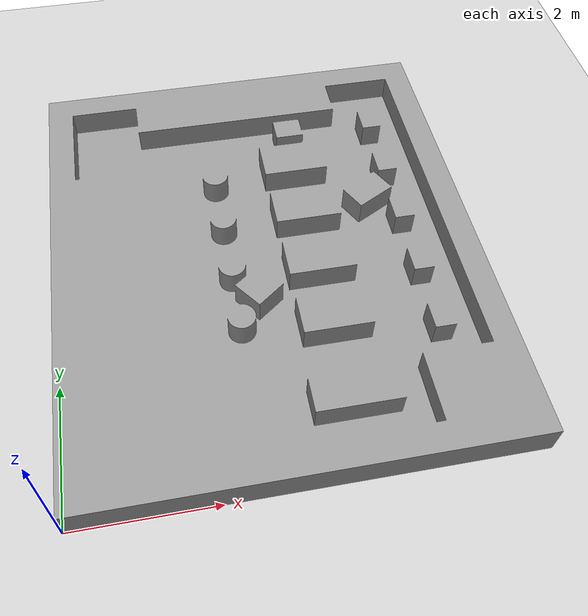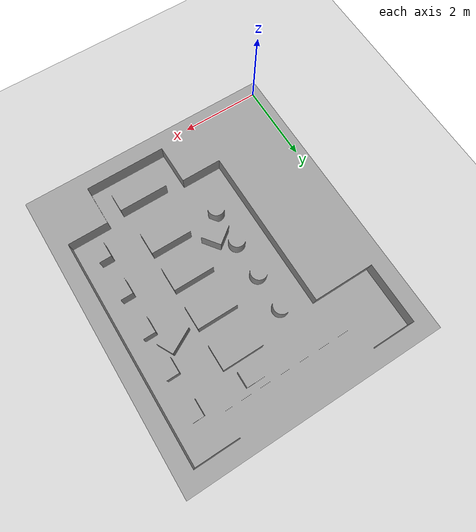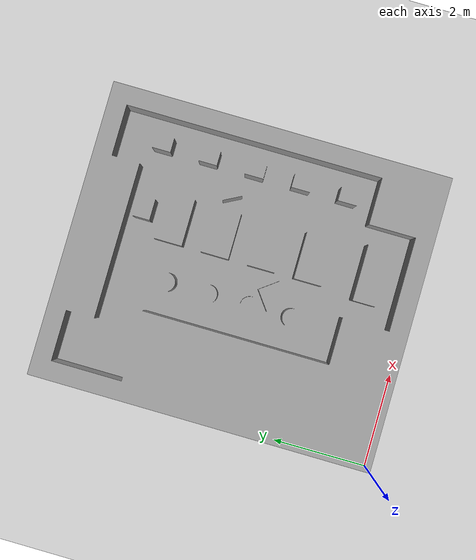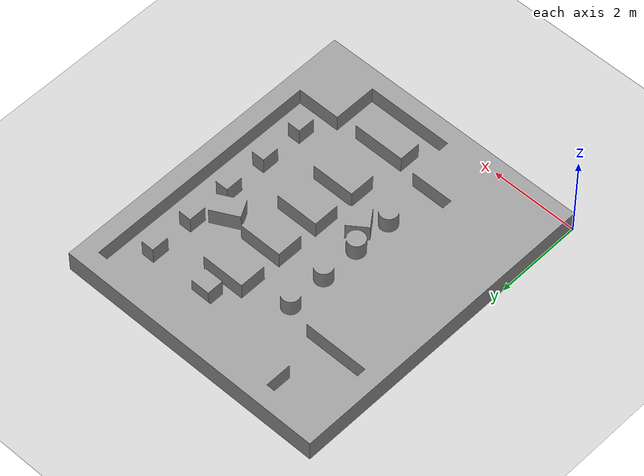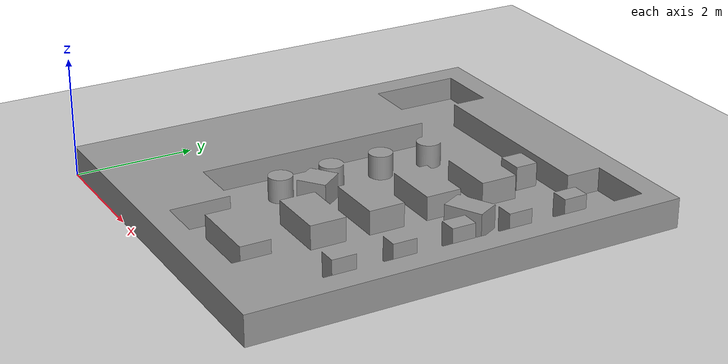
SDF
<sdf version="1.4">
 <world name="default">
  <light name="sun" type="directional">
   <pose>0 0 10 0 -0 0</pose>
   <diffuse>0.8 0.8 0.8 1</diffuse>
   <specular>0.2 0.2 0.2 1</specular>
   <attenuation>
    <range>1000</range>
    <constant>0.9</constant>
    <linear>0.01</linear>
    <quadratic>0.001</quadratic>
   </attenuation>
   <direction>-0.5 0.1 -0.9</direction>
  </light>
  <model name="ground_plane">
   <static>1</static>
   <link name="link">
    <collision name="collision">
     <geometry><plane><normal>0 0 1</normal><size>100 100</size></plane></geometry>
     <surface>
      <friction><ode><mu>1</mu><mu2>1</mu2></ode></friction>
      <contact>
       <ode>
        <kp>1e7</kp>
        <kd>10.0</kd>
        <soft_cfm>0.0</soft_cfm>
        <soft_erp>0.2</soft_erp>
        <maxVel>0.0001</maxVel>
        <minDepth>0.001</minDepth>
       </ode>
      </contact>
     </surface>
    </collision>
    <visual name="visual">
     <cast_shadows>0</cast_shadows>
     <geometry><plane><normal>0 0 1</normal><size>1000 1000</size></plane></geometry>
     <material>
      <script><uri>file://media/materials/scripts/gazebo.material</uri><name>Gazebo/Grey</name></script>
     </material>
    </visual>
    <velocity_decay><linear>0</linear><angular>0</angular></velocity_decay>
   </link>
  </model>
  <model name="machine_room">
   <static>1</static>
   <link name="machine_link">
    <visual name="machine_visual">
     <cast_shadows>0</cast_shadows>
     <geometry>
      <mesh><scale>1 1 1</scale><uri>model://mirrax_gazebo/mesh/machine_room_040.STL</uri></mesh>
     </geometry>
     <material>
      <script><uri>file://media/materials/scripts/gazebo.material</uri><name>Gazebo/Grey</name></script>
     </material>
    </visual>
    <collision name="machine_collision">
     <geometry>
      <mesh><scale>1 1 1</scale><uri>model://mirrax_gazebo/mesh/machine_room_040.STL</uri></mesh>
     </geometry>
     <surface>
      <friction><ode><mu>1</mu><mu2>1</mu2></ode></friction>
      <contact>
       <ode>
        <kp>1e9</kp>
        <kd>1.0</kd>
        <soft_cfm>0.0</soft_cfm>
        <soft_erp>0.2</soft_erp>
        <maxVel>0.0001</maxVel>
        <minDepth>0.001</minDepth>
       </ode>
      </contact>
     </surface>
    </collision>
   </link>
  </model>
  <physics type="ode">
   <simbody>
    <accuracy>0.005</accuracy>
    <max_transient_velocity>0.005</max_transient_velocity>
    <contact><stiffness>1e8</stiffness><dissipation>20.0</dissipation></contact>
   </simbody>
   <ode>
    <solver>
     <type>quick</type>
     <iters>400</iters>
     <sor>1.25</sor>
     <friction_model>cone_model</friction_model>
    </solver>
    <constraints>
     <cfm>0.0</cfm>
     <erp>0.2</erp>
     <contact_max_correcting_vel>0.01</contact_max_correcting_vel>
     <contact_surface_layer>0.0001</contact_surface_layer>
    </constraints>
   </ode>
   <max_step_size>0.001</max_step_size>
   <real_time_factor>1</real_time_factor>
   <real_time_update_rate>1000</real_time_update_rate>
   <gravity>0 0 -9.8</gravity>
  </physics>
  <scene><ambient>0.4 0.4 0.4 1</ambient><background>0.7 0.7 0.7 1</background><shadows>1</shadows></scene>
  <spherical_coordinates>
   <surface_model>EARTH_WGS84</surface_model>
   <latitude_deg>0</latitude_deg>
   <longitude_deg>0</longitude_deg>
   <elevation>0</elevation>
   <heading_deg>0</heading_deg>
  </spherical_coordinates>
 </world>
</sdf>
